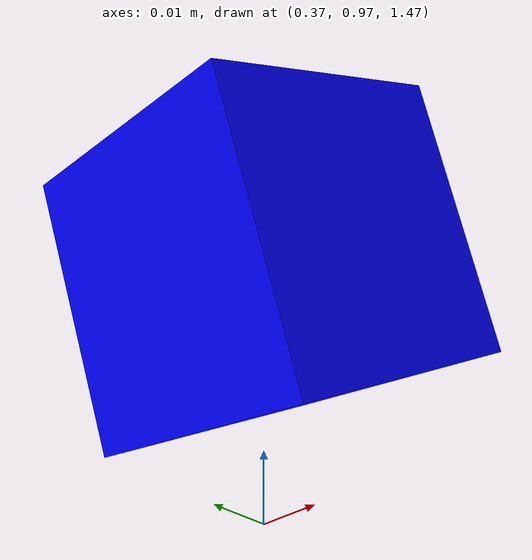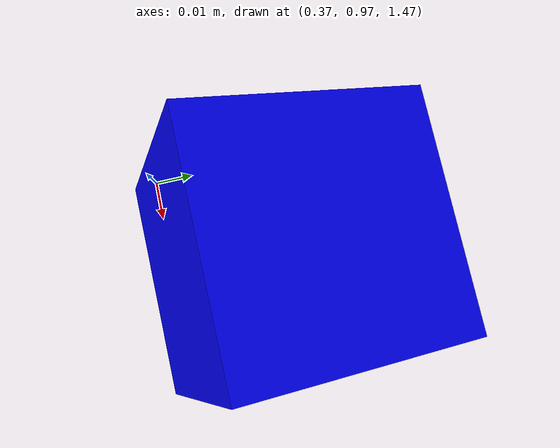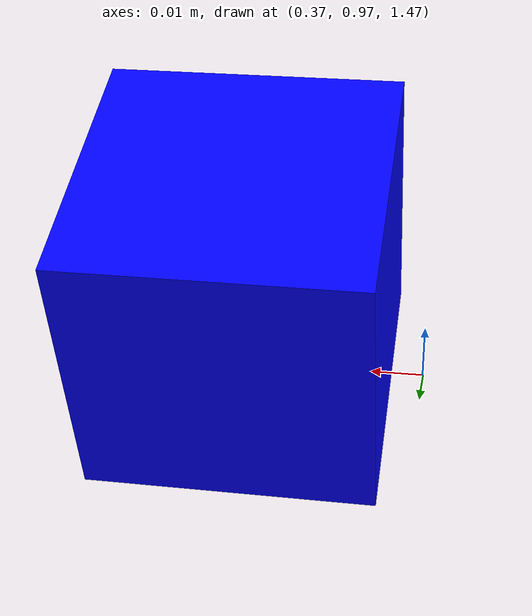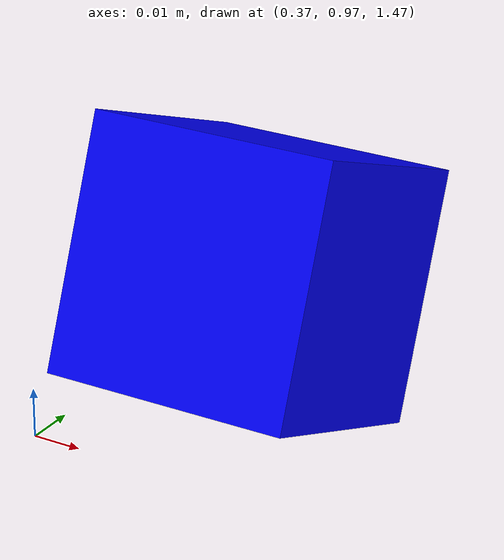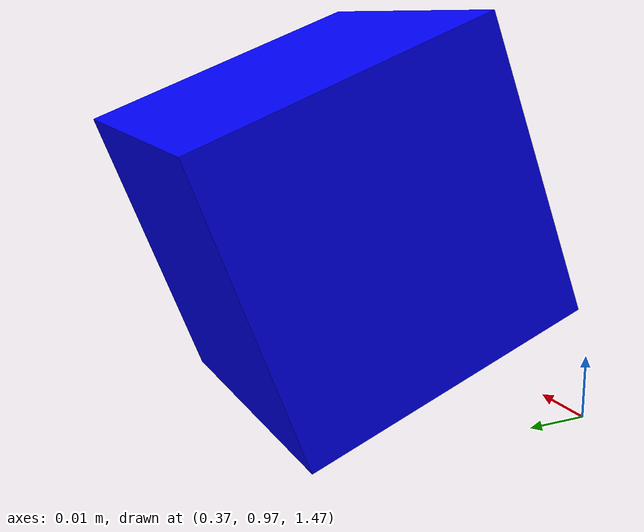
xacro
<?xml version="1.0"?>
<robot name="test_robot" xmlns:xacro="http://www.ros.org/wiki/xacro">

    <link name="world">
    </link>

<joint name="base_joint" type="fixed">
        <parent link="world"/>
        <child link="base_link"/>
        <origin xyz="0.4 1 1.5" rpy="0 1.20 -1.57"/>
</joint>

    <link name="base_link">
    <inertial>
            <mass value="1.0"/>
            <origin xyz="0 0 0"/>
            <inertia ixx="0.1" ixy="0.0" ixz="0.0" iyy="0.1" iyz="0.0" izz="0.1"/>
        </inertial>
        <visual>
            <geometry>
                <box size="0.05 0.05 0.05"/>
            </geometry>
            <material name="blue">
                <color rgba="0.0 0.0 1.0 1.0"/>
            </material>
        </visual>
    </link>

    <gazebo reference="base_link">
  <sensor type="camera" name="camera">
    <update_rate>30</update_rate>
    <visualize>true</visualize>
    <camera>
      <horizontal_fov>1.396</horizontal_fov>
      <image>
        <width>640</width>
        <height>480</height>
        <format>R8G8B8</format>
      </image>
      <clip>
        <near>0.01</near>
        <far>10</far>
      </clip>
    </camera>
    <plugin name="camera_controller" filename="libgazebo_ros_camera.so">
      <alwaysOn>true</alwaysOn>
      <updateRate>30.0</updateRate>
      <cameraName>camera</cameraName>
      <frameName>camera_link</frameName>
    </plugin>
  </sensor>
  </gazebo>

</robot>
